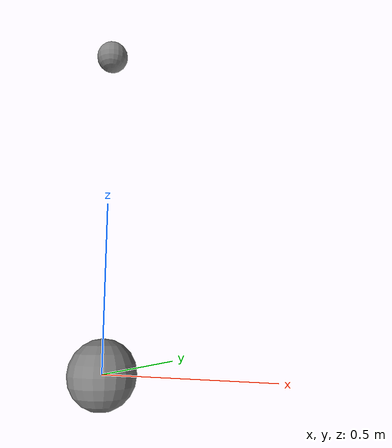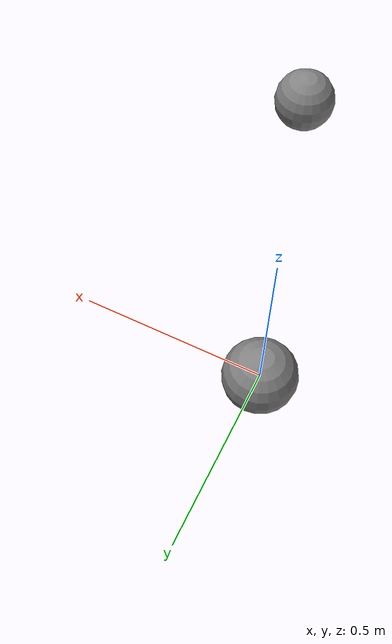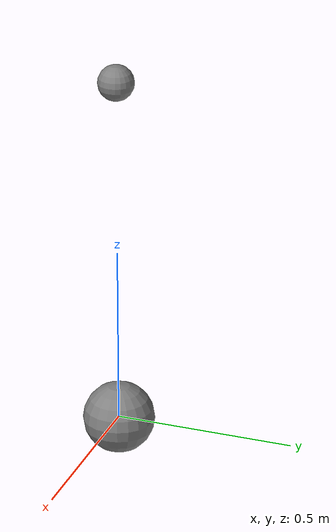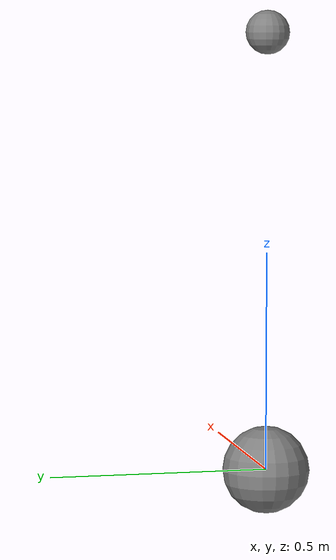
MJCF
<mujoco>
                <compiler fusestatic="false"/>
                <worldbody>
                    <body name="parent" pos="0 0 0">
                        <joint name="j1" type="hinge" axis="0 0 1"/>
                        <geom name="g0" type="sphere" size="0.1" mass="1"/>
                        <body name="static_child" pos="0 0 1">
                            <geom name="g1" type="sphere" size="0.05" pos="0 0 0" euler="0 0 90" mass="0.5"/>
                        </body>
                    </body>
                </worldbody>
            </mujoco>
